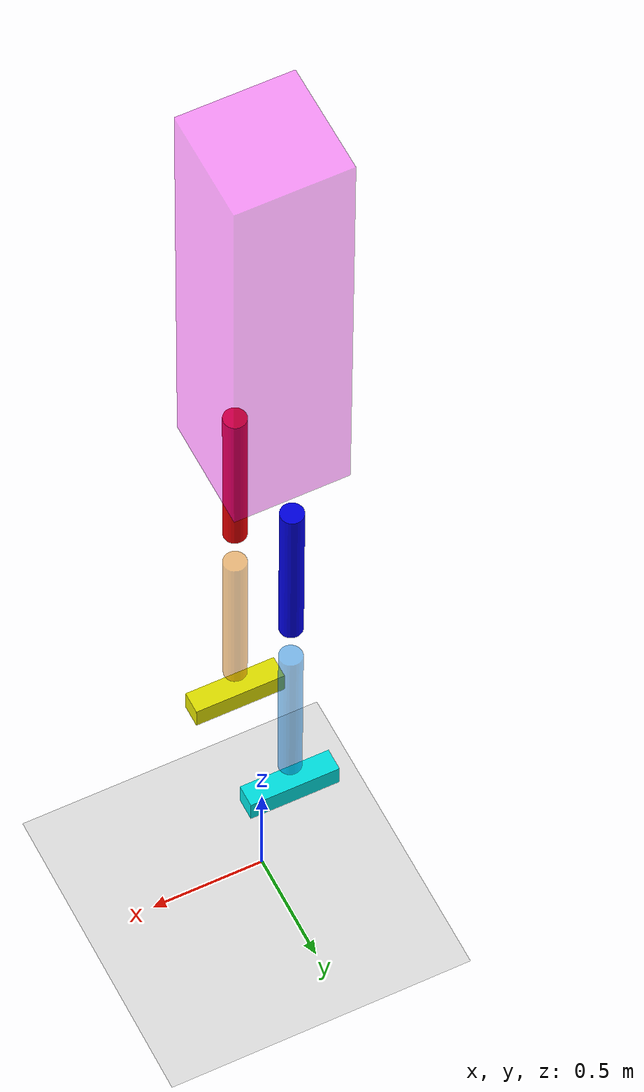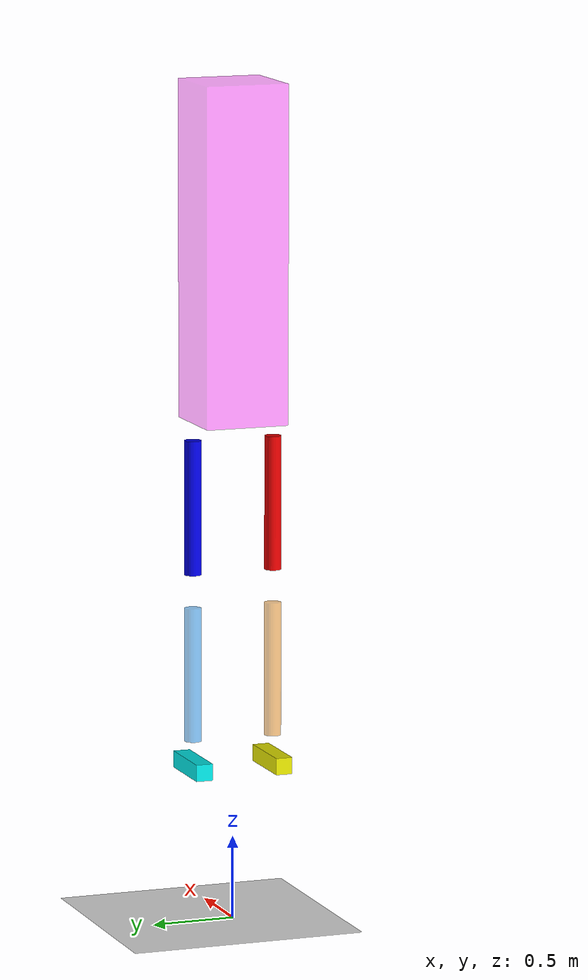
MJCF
<mujoco>
    <visual>
        <headlight ambient="0.25 0.25 0.25"/>
    </visual>

    <option timestep="0.0003" integrator="RK4" gravity="0 0 0">
        <flag sensornoise="disable" contact="enable" energy="enable"/>
    </option>

    <worldbody>
        <geom type="plane" size="5 5 0.1" rgba=".9 0.9 0.9 1"/>

        <body name="ass" pos="0 0 4" euler="0 0 0">
            <joint name="x" type="slide" pos="0 0 -1" axis="1 0 0"/>
            <joint name="z" type="slide" pos="0 0 -1" axis="0 0 1"/>
            <joint name="pin" type="hinge" pos="0 0 -1" axis="0 -1 0"/>
            <geom type="box" size="0.25 0.25 1" rgba="1 0 1 .4" mass="2"/>
            <body name="leg11" pos="0 -0.25 -1.5" euler="0 0 0">
                <joint name="hip1" type="hinge" pos="0 0 0.5" axis="0 -1 0"/>
                <geom type="cylinder" size="0.05 .4" rgba=".9 0 0 1" mass="1"/>
                <body name="leg12" pos="0 0 -1" euler="0 0 0">
                    <geom type="cylinder" size="0.05 .4" rgba=".9 .5 0 .5" mass="1"/>
                    <joint name="knee1" type="hinge" pos="0 0 0.5" axis="0 -1 0" limited="true" range="-1 1.5" />
                    <body name="foot1" pos="0 0 -0.55" euler="0 0 0">
                        <joint name="anckle1" type="hinge" pos="0 0 0.05" axis="0 -1 0"/>
                        <geom type="box" size="0.2 0.05 0.05" rgba="0.9 .9 0 1" mass="0.5"/>
                    </body>
                </body>
            </body>
            <body name="leg21" pos="0 0.25 -1.5" euler="0 0 0">
                <geom type="cylinder" size="0.05 .4" rgba="0 0 0.9 1" mass="1"/>
                <joint name="hip2" type="hinge" pos="0 0 0.5" axis="0 -1 0"/>
                <body name="leg22" pos="0 0 -1" euler="0 0 0">
                    <geom type="cylinder" size="0.05 .4" rgba="0 0.5 0.9 0.5" mass="1"/>
                    <joint name="knee2" type="hinge" pos="0 0 0.5" axis="0 -1 0"/>
                    <body name="foot2" pos="0 0 -0.55" euler="0 0 0">
                        <joint name="anckle2" type="hinge" pos="0 0 0.05" axis="0 -1 0"/>
                        <geom type="box" size="0.2 0.05 0.05" rgba="0 .9 0.9 1" mass="0.5"/>
                    </body>
                </body>
            </body>
        </body>
    </worldbody>
    <actuator>
        <position name="pservo_hip1" joint="hip1" kp="100"/>
        <velocity name="vservo_hip1" joint="hip1" kv="10"/>
        <position name="pservo_hip2" joint="hip2" kp="100"/>
        <velocity name="vservo_hip2" joint="hip2" kv="10"/>
        <position name="pservo_knee1" joint="knee1" kp="100"/>
        <velocity name="vservo_knee1" joint="knee1" kv="10"/>
        <position name="pservo_knee2" joint="knee2" kp="100"/>
        <velocity name="vservo_knee2" joint="knee2" kv="10"/>
        <position name="pservo_anckle1" joint="anckle1" kp="100"/>
        <velocity name="vservo_anckle1" joint="anckle1" kv="10"/>
        <position name="pservo_anckle2" joint="anckle2" kp="100"/>
        <velocity name="vservo_anckle2" joint="anckle2" kv="10"/>
    </actuator>
</mujoco>
